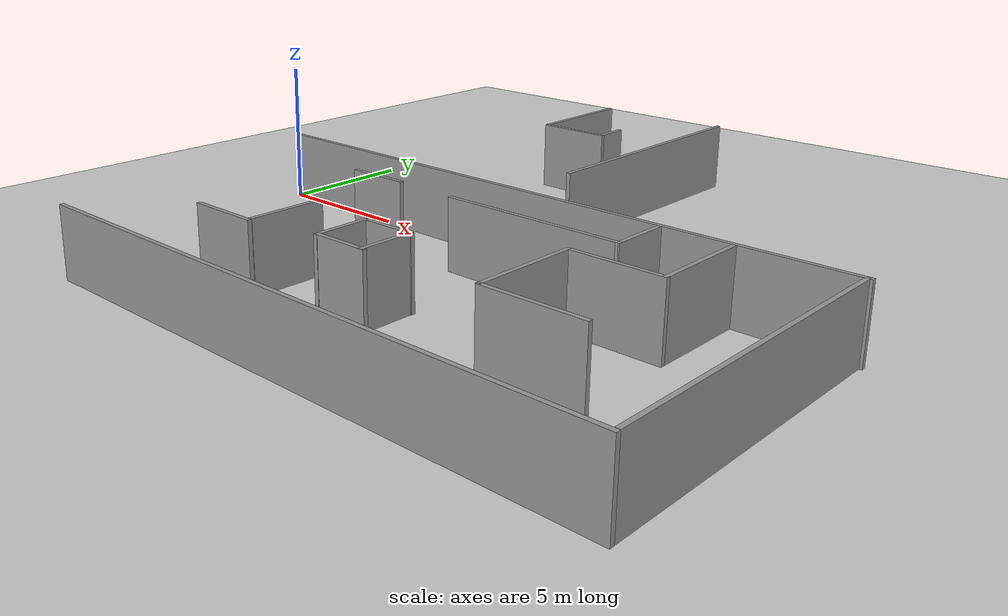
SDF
<sdf version="1.7">
 <world name="default">
  <model name="ground_plane">
   <static>1</static>
   <link name="link">
    <collision name="collision">
     <geometry><plane><normal>0 0 1</normal><size>100 100</size></plane></geometry>
     <surface>
      <contact><collide_bitmask>65535</collide_bitmask></contact>
      <friction><ode><mu>100</mu><mu2>50</mu2></ode></friction>
     </surface>
    </collision>
    <visual name="visual">
     <cast_shadows>0</cast_shadows>
     <geometry><plane><normal>0 0 1</normal><size>100 100</size></plane></geometry>
     <material>
      <script><uri>file://media/materials/scripts/gazebo.material</uri><name>Gazebo/Grey</name></script>
     </material>
    </visual>
   </link>
  </model>
  <model name="newwoorld">
   <link name="Wall_109">
    <pose>14.3711 -3.20093 0 0 -0 3.14159</pose>
    <visual name="Wall_109_Visual">
     <pose>0 0 1.25 0 -0 0</pose>
     <geometry><box><size>6.5 0.15 2.5</size></box></geometry>
     <material>
      <script><uri>file://media/materials/scripts/gazebo.material</uri><name>Gazebo/Grey</name></script>
      <ambient>1 1 1 1</ambient>
      <shader type="pixel"/>
     </material>
     <meta><layer>0</layer></meta>
    </visual>
    <collision name="Wall_109_Collision">
     <pose>0 0 1.25 0 -0 0</pose>
     <geometry><box><size>6.5 0.15 2.5</size></box></geometry>
     <surface>
      <friction>
       <ode><mu>1</mu><mu2>1</mu2><fdir1>0 0 0</fdir1><slip1>0</slip1><slip2>0</slip2></ode>
       <torsional>
        <coefficient>1</coefficient>
        <patch_radius>0</patch_radius>
        <surface_radius>0</surface_radius>
        <use_patch_radius>1</use_patch_radius>
        <ode><slip>0</slip></ode>
       </torsional>
      </friction>
      <bounce><restitution_coefficient>0</restitution_coefficient><threshold>1e+06</threshold></bounce>
      <contact>
       <collide_without_contact>0</collide_without_contact>
       <collide_without_contact_bitmask>1</collide_without_contact_bitmask>
       <collide_bitmask>1</collide_bitmask>
       <ode>
        <soft_cfm>0</soft_cfm>
        <soft_erp>0.2</soft_erp>
        <kp>1e+13</kp>
        <kd>1</kd>
        <max_vel>0.01</max_vel>
        <min_depth>0</min_depth>
       </ode>
       <bullet>
        <split_impulse>1</split_impulse>
        <split_impulse_penetration_threshold>-0.01</split_impulse_penetration_threshold>
        <soft_cfm>0</soft_cfm>
        <soft_erp>0.2</soft_erp>
        <kp>1e+13</kp>
        <kd>1</kd>
       </bullet>
      </contact>
     </surface>
    </collision>
   </link>
   <link name="Wall_113">
    <pose>11.8737 -6.61393 0 0 -0 3.14159</pose>
    <visual name="Wall_113_Visual">
     <pose>0 0 1.25 0 -0 0</pose>
     <geometry><box><size>2 0.15 2.5</size></box></geometry>
     <material>
      <script><uri>file://media/materials/scripts/gazebo.material</uri><name>Gazebo/Grey</name></script>
      <ambient>1 1 1 1</ambient>
      <shader type="pixel"/>
     </material>
     <meta><layer>0</layer></meta>
    </visual>
    <collision name="Wall_113_Collision">
     <pose>0 0 1.25 0 -0 0</pose>
     <geometry><box><size>2 0.15 2.5</size></box></geometry>
     <surface>
      <friction>
       <ode><mu>1</mu><mu2>1</mu2><fdir1>0 0 0</fdir1><slip1>0</slip1><slip2>0</slip2></ode>
       <torsional>
        <coefficient>1</coefficient>
        <patch_radius>0</patch_radius>
        <surface_radius>0</surface_radius>
        <use_patch_radius>1</use_patch_radius>
        <ode><slip>0</slip></ode>
       </torsional>
      </friction>
      <bounce><restitution_coefficient>0</restitution_coefficient><threshold>1e+06</threshold></bounce>
      <contact>
       <collide_without_contact>0</collide_without_contact>
       <collide_without_contact_bitmask>1</collide_without_contact_bitmask>
       <collide_bitmask>1</collide_bitmask>
       <ode>
        <soft_cfm>0</soft_cfm>
        <soft_erp>0.2</soft_erp>
        <kp>1e+13</kp>
        <kd>1</kd>
        <max_vel>0.01</max_vel>
        <min_depth>0</min_depth>
       </ode>
       <bullet>
        <split_impulse>1</split_impulse>
        <split_impulse_penetration_threshold>-0.01</split_impulse_penetration_threshold>
        <soft_cfm>0</soft_cfm>
        <soft_erp>0.2</soft_erp>
        <kp>1e+13</kp>
        <kd>1</kd>
       </bullet>
      </contact>
     </surface>
    </collision>
   </link>
   <link name="Wall_114">
    <pose>10.928 -7.59269 0 0 0 -1.5708</pose>
    <visual name="Wall_114_Visual">
     <pose>0 0 1.25 0 -0 0</pose>
     <geometry><box><size>2 0.15 2.5</size></box></geometry>
     <material>
      <script><uri>file://media/materials/scripts/gazebo.material</uri><name>Gazebo/Grey</name></script>
      <ambient>1 1 1 1</ambient>
      <shader type="pixel"/>
     </material>
     <meta><layer>0</layer></meta>
    </visual>
    <collision name="Wall_114_Collision">
     <pose>0 0 1.25 0 -0 0</pose>
     <geometry><box><size>2 0.15 2.5</size></box></geometry>
     <surface>
      <friction>
       <ode><mu>1</mu><mu2>1</mu2><fdir1>0 0 0</fdir1><slip1>0</slip1><slip2>0</slip2></ode>
       <torsional>
        <coefficient>1</coefficient>
        <patch_radius>0</patch_radius>
        <surface_radius>0</surface_radius>
        <use_patch_radius>1</use_patch_radius>
        <ode><slip>0</slip></ode>
       </torsional>
      </friction>
      <bounce><restitution_coefficient>0</restitution_coefficient><threshold>1e+06</threshold></bounce>
      <contact>
       <collide_without_contact>0</collide_without_contact>
       <collide_without_contact_bitmask>1</collide_without_contact_bitmask>
       <collide_bitmask>1</collide_bitmask>
       <ode>
        <soft_cfm>0</soft_cfm>
        <soft_erp>0.2</soft_erp>
        <kp>1e+13</kp>
        <kd>1</kd>
        <max_vel>0.01</max_vel>
        <min_depth>0</min_depth>
       </ode>
       <bullet>
        <split_impulse>1</split_impulse>
        <split_impulse_penetration_threshold>-0.01</split_impulse_penetration_threshold>
        <soft_cfm>0</soft_cfm>
        <soft_erp>0.2</soft_erp>
        <kp>1e+13</kp>
        <kd>1</kd>
       </bullet>
      </contact>
     </surface>
    </collision>
   </link>
   <link name="Wall_117">
    <pose>12.7692 -7.56461 0 0 0 -1.5708</pose>
    <visual name="Wall_117_Visual">
     <pose>0 0 1.25 0 -0 0</pose>
     <geometry><box><size>2 0.15 2.5</size></box></geometry>
     <material>
      <script><uri>file://media/materials/scripts/gazebo.material</uri><name>Gazebo/Grey</name></script>
      <ambient>1 1 1 1</ambient>
      <shader type="pixel"/>
     </material>
     <meta><layer>0</layer></meta>
    </visual>
    <collision name="Wall_117_Collision">
     <pose>0 0 1.25 0 -0 0</pose>
     <geometry><box><size>2 0.15 2.5</size></box></geometry>
     <surface>
      <friction>
       <ode><mu>1</mu><mu2>1</mu2><fdir1>0 0 0</fdir1><slip1>0</slip1><slip2>0</slip2></ode>
       <torsional>
        <coefficient>1</coefficient>
        <patch_radius>0</patch_radius>
        <surface_radius>0</surface_radius>
        <use_patch_radius>1</use_patch_radius>
        <ode><slip>0</slip></ode>
       </torsional>
      </friction>
      <bounce><restitution_coefficient>0</restitution_coefficient><threshold>1e+06</threshold></bounce>
      <contact>
       <collide_without_contact>0</collide_without_contact>
       <collide_without_contact_bitmask>1</collide_without_contact_bitmask>
       <collide_bitmask>1</collide_bitmask>
       <ode>
        <soft_cfm>0</soft_cfm>
        <soft_erp>0.2</soft_erp>
        <kp>1e+13</kp>
        <kd>1</kd>
        <max_vel>0.01</max_vel>
        <min_depth>0</min_depth>
       </ode>
       <bullet>
        <split_impulse>1</split_impulse>
        <split_impulse_penetration_threshold>-0.01</split_impulse_penetration_threshold>
        <soft_cfm>0</soft_cfm>
        <soft_erp>0.2</soft_erp>
        <kp>1e+13</kp>
        <kd>1</kd>
       </bullet>
      </contact>
     </surface>
    </collision>
   </link>
   <link name="Wall_118">
    <pose>11.9001 -8.50409 0 0 -0 3.14159</pose>
    <visual name="Wall_118_Visual">
     <pose>0 0 1.25 0 -0 0</pose>
     <geometry><box><size>2 0.15 2.5</size></box></geometry>
     <material>
      <script><uri>file://media/materials/scripts/gazebo.material</uri><name>Gazebo/Grey</name></script>
      <ambient>1 1 1 1</ambient>
      <shader type="pixel"/>
     </material>
     <meta><layer>0</layer></meta>
    </visual>
    <collision name="Wall_118_Collision">
     <pose>0 0 1.25 0 -0 0</pose>
     <geometry><box><size>2 0.15 2.5</size></box></geometry>
     <surface>
      <friction>
       <ode><mu>1</mu><mu2>1</mu2><fdir1>0 0 0</fdir1><slip1>0</slip1><slip2>0</slip2></ode>
       <torsional>
        <coefficient>1</coefficient>
        <patch_radius>0</patch_radius>
        <surface_radius>0</surface_radius>
        <use_patch_radius>1</use_patch_radius>
        <ode><slip>0</slip></ode>
       </torsional>
      </friction>
      <bounce><restitution_coefficient>0</restitution_coefficient><threshold>1e+06</threshold></bounce>
      <contact>
       <collide_without_contact>0</collide_without_contact>
       <collide_without_contact_bitmask>1</collide_without_contact_bitmask>
       <collide_bitmask>1</collide_bitmask>
       <ode>
        <soft_cfm>0</soft_cfm>
        <soft_erp>0.2</soft_erp>
        <kp>1e+13</kp>
        <kd>1</kd>
        <max_vel>0.01</max_vel>
        <min_depth>0</min_depth>
       </ode>
       <bullet>
        <split_impulse>1</split_impulse>
        <split_impulse_penetration_threshold>-0.01</split_impulse_penetration_threshold>
        <soft_cfm>0</soft_cfm>
        <soft_erp>0.2</soft_erp>
        <kp>1e+13</kp>
        <kd>1</kd>
       </bullet>
      </contact>
     </surface>
    </collision>
   </link>
   <link name="Wall_120">
    <pose>7.23265 -9.0668 0 0 -0 0</pose>
    <inertial>
     <inertia><ixx>0</ixx><ixy>0</ixy><ixz>0</ixz><iyy>0</iyy><iyz>0</iyz><izz>0</izz></inertia>
     <mass>0</mass>
    </inertial>
    <visual name="Wall_120_Visual">
     <pose>0 0 1.25 0 -0 0</pose>
     <geometry><box><size>2.57319 0.15 2.5</size></box></geometry>
     <material>
      <script><uri>file://media/materials/scripts/gazebo.material</uri><name>Gazebo/Grey</name></script>
      <ambient>1 1 1 1</ambient>
      <shader type="pixel"/>
     </material>
     <meta><layer>0</layer></meta>
    </visual>
    <collision name="Wall_120_Collision">
     <pose>0 0 1.25 0 -0 0</pose>
     <geometry><box><size>2.57319 0.15 2.5</size></box></geometry>
     <surface>
      <friction>
       <ode><mu>1</mu><mu2>1</mu2><fdir1>0 0 0</fdir1><slip1>0</slip1><slip2>0</slip2></ode>
       <torsional>
        <coefficient>1</coefficient>
        <patch_radius>0</patch_radius>
        <surface_radius>0</surface_radius>
        <use_patch_radius>1</use_patch_radius>
        <ode><slip>0</slip></ode>
       </torsional>
      </friction>
      <bounce><restitution_coefficient>0</restitution_coefficient><threshold>1e+06</threshold></bounce>
      <contact>
       <collide_without_contact>0</collide_without_contact>
       <collide_without_contact_bitmask>1</collide_without_contact_bitmask>
       <collide_bitmask>1</collide_bitmask>
       <ode>
        <soft_cfm>0</soft_cfm>
        <soft_erp>0.2</soft_erp>
        <kp>1e+13</kp>
        <kd>1</kd>
        <max_vel>0.01</max_vel>
        <min_depth>0</min_depth>
       </ode>
       <bullet>
        <split_impulse>1</split_impulse>
        <split_impulse_penetration_threshold>-0.01</split_impulse_penetration_threshold>
        <soft_cfm>0</soft_cfm>
        <soft_erp>0.2</soft_erp>
        <kp>1e+13</kp>
        <kd>1</kd>
       </bullet>
      </contact>
     </surface>
    </collision>
   </link>
   <link name="Wall_125">
    <pose>7.69661 -3.06382 0 0 -0 0</pose>
    <visual name="Wall_125_Visual">
     <pose>0 0 1.25 0 -0 0</pose>
     <geometry><box><size>2.25 0.15 2.5</size></box></geometry>
     <material>
      <script><uri>file://media/materials/scripts/gazebo.material</uri><name>Gazebo/Grey</name></script>
      <ambient>1 1 1 1</ambient>
      <shader type="pixel"/>
     </material>
     <meta><layer>0</layer></meta>
    </visual>
    <collision name="Wall_125_Collision">
     <pose>0 0 1.25 0 -0 0</pose>
     <geometry><box><size>2.25 0.15 2.5</size></box></geometry>
     <surface>
      <friction>
       <ode><mu>1</mu><mu2>1</mu2><fdir1>0 0 0</fdir1><slip1>0</slip1><slip2>0</slip2></ode>
       <torsional>
        <coefficient>1</coefficient>
        <patch_radius>0</patch_radius>
        <surface_radius>0</surface_radius>
        <use_patch_radius>1</use_patch_radius>
        <ode><slip>0</slip></ode>
       </torsional>
      </friction>
      <bounce><restitution_coefficient>0</restitution_coefficient><threshold>1e+06</threshold></bounce>
      <contact>
       <collide_without_contact>0</collide_without_contact>
       <collide_without_contact_bitmask>1</collide_without_contact_bitmask>
       <collide_bitmask>1</collide_bitmask>
       <ode>
        <soft_cfm>0</soft_cfm>
        <soft_erp>0.2</soft_erp>
        <kp>1e+13</kp>
        <kd>1</kd>
        <max_vel>0.01</max_vel>
        <min_depth>0</min_depth>
       </ode>
       <bullet>
        <split_impulse>1</split_impulse>
        <split_impulse_penetration_threshold>-0.01</split_impulse_penetration_threshold>
        <soft_cfm>0</soft_cfm>
        <soft_erp>0.2</soft_erp>
        <kp>1e+13</kp>
        <kd>1</kd>
       </bullet>
      </contact>
     </surface>
    </collision>
   </link>
   <link name="Wall_126">
    <pose>8.42456 -7.58944 0 0 0 -1.5708</pose>
    <visual name="Wall_126_Visual">
     <pose>0 0 1.25 0 -0 0</pose>
     <geometry><box><size>2.75 0.15 2.5</size></box></geometry>
     <material>
      <script><uri>file://media/materials/scripts/gazebo.material</uri><name>Gazebo/Grey</name></script>
      <ambient>1 1 1 1</ambient>
      <shader type="pixel"/>
     </material>
     <meta><layer>0</layer></meta>
    </visual>
    <collision name="Wall_126_Collision">
     <pose>0 0 1.25 0 -0 0</pose>
     <geometry><box><size>2.75 0.15 2.5</size></box></geometry>
     <surface>
      <friction>
       <ode><mu>1</mu><mu2>1</mu2><fdir1>0 0 0</fdir1><slip1>0</slip1><slip2>0</slip2></ode>
       <torsional>
        <coefficient>1</coefficient>
        <patch_radius>0</patch_radius>
        <surface_radius>0</surface_radius>
        <use_patch_radius>1</use_patch_radius>
        <ode><slip>0</slip></ode>
       </torsional>
      </friction>
      <bounce><restitution_coefficient>0</restitution_coefficient><threshold>1e+06</threshold></bounce>
      <contact>
       <collide_without_contact>0</collide_without_contact>
       <collide_without_contact_bitmask>1</collide_without_contact_bitmask>
       <collide_bitmask>1</collide_bitmask>
       <ode>
        <soft_cfm>0</soft_cfm>
        <soft_erp>0.2</soft_erp>
        <kp>1e+13</kp>
        <kd>1</kd>
        <max_vel>0.01</max_vel>
        <min_depth>0</min_depth>
       </ode>
       <bullet>
        <split_impulse>1</split_impulse>
        <split_impulse_penetration_threshold>-0.01</split_impulse_penetration_threshold>
        <soft_cfm>0</soft_cfm>
        <soft_erp>0.2</soft_erp>
        <kp>1e+13</kp>
        <kd>1</kd>
       </bullet>
      </contact>
     </surface>
    </collision>
   </link>
   <link name="Wall_129">
    <pose>17.5461 -2.15094 0 0 -0 1.5708</pose>
    <visual name="Wall_129_Visual">
     <pose>0 0 1.25 0 -0 0</pose>
     <geometry><box><size>2.25 0.15 2.5</size></box></geometry>
     <material>
      <script><uri>file://media/materials/scripts/gazebo.material</uri><name>Gazebo/Grey</name></script>
      <ambient>1 1 1 1</ambient>
      <shader type="pixel"/>
     </material>
     <meta><layer>0</layer></meta>
    </visual>
    <collision name="Wall_129_Collision">
     <pose>0 0 1.25 0 -0 0</pose>
     <geometry><box><size>2.25 0.15 2.5</size></box></geometry>
     <surface>
      <friction>
       <ode><mu>1</mu><mu2>1</mu2><fdir1>0 0 0</fdir1><slip1>0</slip1><slip2>0</slip2></ode>
       <torsional>
        <coefficient>1</coefficient>
        <patch_radius>0</patch_radius>
        <surface_radius>0</surface_radius>
        <use_patch_radius>1</use_patch_radius>
        <ode><slip>0</slip></ode>
       </torsional>
      </friction>
      <bounce><restitution_coefficient>0</restitution_coefficient><threshold>1e+06</threshold></bounce>
      <contact>
       <collide_without_contact>0</collide_without_contact>
       <collide_without_contact_bitmask>1</collide_without_contact_bitmask>
       <collide_bitmask>1</collide_bitmask>
       <ode>
        <soft_cfm>0</soft_cfm>
        <soft_erp>0.2</soft_erp>
        <kp>1e+13</kp>
        <kd>1</kd>
        <max_vel>0.01</max_vel>
        <min_depth>0</min_depth>
       </ode>
       <bullet>
        <split_impulse>1</split_impulse>
        <split_impulse_penetration_threshold>-0.01</split_impulse_penetration_threshold>
        <soft_cfm>0</soft_cfm>
        <soft_erp>0.2</soft_erp>
        <kp>1e+13</kp>
        <kd>1</kd>
       </bullet>
      </contact>
     </surface>
    </collision>
   </link>
   <link name="Wall_131">
    <pose>19.9598 -2.90481 0 0 0 -1.5708</pose>
    <visual name="Wall_131_Visual">
     <pose>0 0 1.25 0 -0 0</pose>
     <geometry><box><size>3.5 0.15 2.5</size></box></geometry>
     <material>
      <script><uri>file://media/materials/scripts/gazebo.material</uri><name>Gazebo/Grey</name></script>
      <ambient>1 1 1 1</ambient>
      <shader type="pixel"/>
     </material>
     <meta><layer>0</layer></meta>
    </visual>
    <collision name="Wall_131_Collision">
     <pose>0 0 1.25 0 -0 0</pose>
     <geometry><box><size>3.5 0.15 2.5</size></box></geometry>
     <surface>
      <friction>
       <ode><mu>1</mu><mu2>1</mu2><fdir1>0 0 0</fdir1><slip1>0</slip1><slip2>0</slip2></ode>
       <torsional>
        <coefficient>1</coefficient>
        <patch_radius>0</patch_radius>
        <surface_radius>0</surface_radius>
        <use_patch_radius>1</use_patch_radius>
        <ode><slip>0</slip></ode>
       </torsional>
      </friction>
      <bounce><restitution_coefficient>0</restitution_coefficient><threshold>1e+06</threshold></bounce>
      <contact>
       <collide_without_contact>0</collide_without_contact>
       <collide_without_contact_bitmask>1</collide_without_contact_bitmask>
       <collide_bitmask>1</collide_bitmask>
       <ode>
        <soft_cfm>0</soft_cfm>
        <soft_erp>0.2</soft_erp>
        <kp>1e+13</kp>
        <kd>1</kd>
        <max_vel>0.01</max_vel>
        <min_depth>0</min_depth>
       </ode>
       <bullet>
        <split_impulse>1</split_impulse>
        <split_impulse_penetration_threshold>-0.01</split_impulse_penetration_threshold>
        <soft_cfm>0</soft_cfm>
        <soft_erp>0.2</soft_erp>
        <kp>1e+13</kp>
        <kd>1</kd>
       </bullet>
      </contact>
     </surface>
    </collision>
   </link>
   <link name="Wall_132">
    <pose>18.4098 -4.57981 0 0 -0 3.14159</pose>
    <visual name="Wall_132_Visual">
     <pose>0 0 1.25 0 -0 0</pose>
     <geometry><box><size>3.25 0.15 2.5</size></box></geometry>
     <material>
      <script><uri>file://media/materials/scripts/gazebo.material</uri><name>Gazebo/Grey</name></script>
      <ambient>1 1 1 1</ambient>
      <shader type="pixel"/>
     </material>
     <meta><layer>0</layer></meta>
    </visual>
    <collision name="Wall_132_Collision">
     <pose>0 0 1.25 0 -0 0</pose>
     <geometry><box><size>3.25 0.15 2.5</size></box></geometry>
     <surface>
      <friction>
       <ode><mu>1</mu><mu2>1</mu2><fdir1>0 0 0</fdir1><slip1>0</slip1><slip2>0</slip2></ode>
       <torsional>
        <coefficient>1</coefficient>
        <patch_radius>0</patch_radius>
        <surface_radius>0</surface_radius>
        <use_patch_radius>1</use_patch_radius>
        <ode><slip>0</slip></ode>
       </torsional>
      </friction>
      <bounce><restitution_coefficient>0</restitution_coefficient><threshold>1e+06</threshold></bounce>
      <contact>
       <collide_without_contact>0</collide_without_contact>
       <collide_without_contact_bitmask>1</collide_without_contact_bitmask>
       <collide_bitmask>1</collide_bitmask>
       <ode>
        <soft_cfm>0</soft_cfm>
        <soft_erp>0.2</soft_erp>
        <kp>1e+13</kp>
        <kd>1</kd>
        <max_vel>0.01</max_vel>
        <min_depth>0</min_depth>
       </ode>
       <bullet>
        <split_impulse>1</split_impulse>
        <split_impulse_penetration_threshold>-0.01</split_impulse_penetration_threshold>
        <soft_cfm>0</soft_cfm>
        <soft_erp>0.2</soft_erp>
        <kp>1e+13</kp>
        <kd>1</kd>
       </bullet>
      </contact>
     </surface>
    </collision>
   </link>
   <link name="Wall_133">
    <pose>16.8377 -6.39924 0 0 0 -1.5708</pose>
    <inertial>
     <inertia><ixx>0</ixx><ixy>0</ixy><ixz>0</ixz><iyy>0</iyy><iyz>0</iyz><izz>0</izz></inertia>
     <mass>0</mass>
    </inertial>
    <visual name="Wall_133_Visual">
     <pose>0 0 1.25 0 -0 0</pose>
     <geometry><box><size>3.80144 0.15 2.5</size></box></geometry>
     <material>
      <script><uri>file://media/materials/scripts/gazebo.material</uri><name>Gazebo/Grey</name></script>
      <ambient>1 1 1 1</ambient>
      <shader type="pixel"/>
     </material>
     <meta><layer>0</layer></meta>
    </visual>
    <collision name="Wall_133_Collision">
     <pose>0 0 1.25 0 -0 0</pose>
     <geometry><box><size>3.80144 0.15 2.5</size></box></geometry>
     <surface>
      <friction>
       <ode><mu>1</mu><mu2>1</mu2><fdir1>0 0 0</fdir1><slip1>0</slip1><slip2>0</slip2></ode>
       <torsional>
        <coefficient>1</coefficient>
        <patch_radius>0</patch_radius>
        <surface_radius>0</surface_radius>
        <use_patch_radius>1</use_patch_radius>
        <ode><slip>0</slip></ode>
       </torsional>
      </friction>
      <bounce><restitution_coefficient>0</restitution_coefficient><threshold>1e+06</threshold></bounce>
      <contact>
       <collide_without_contact>0</collide_without_contact>
       <collide_without_contact_bitmask>1</collide_without_contact_bitmask>
       <collide_bitmask>1</collide_bitmask>
       <ode>
        <soft_cfm>0</soft_cfm>
        <soft_erp>0.2</soft_erp>
        <kp>1e+13</kp>
        <kd>1</kd>
        <max_vel>0.01</max_vel>
        <min_depth>0</min_depth>
       </ode>
       <bullet>
        <split_impulse>1</split_impulse>
        <split_impulse_penetration_threshold>-0.01</split_impulse_penetration_threshold>
        <soft_cfm>0</soft_cfm>
        <soft_erp>0.2</soft_erp>
        <kp>1e+13</kp>
        <kd>1</kd>
       </bullet>
      </contact>
     </surface>
    </collision>
   </link>
   <link name="Wall_134">
    <pose>18.5366 -8.24941 0 0 -0 0</pose>
    <inertial>
     <inertia><ixx>0</ixx><ixy>0</ixy><ixz>0</ixz><iyy>0</iyy><iyz>0</iyz><izz>0</izz></inertia>
     <mass>0</mass>
    </inertial>
    <visual name="Wall_134_Visual">
     <pose>0 0 1.25 0 -0 0</pose>
     <geometry><box><size>3.50876 0.15 2.5</size></box></geometry>
     <material>
      <script><uri>file://media/materials/scripts/gazebo.material</uri><name>Gazebo/Grey</name></script>
      <ambient>1 1 1 1</ambient>
      <shader type="pixel"/>
     </material>
     <meta><layer>0</layer></meta>
    </visual>
    <collision name="Wall_134_Collision">
     <pose>0 0 1.25 0 -0 0</pose>
     <geometry><box><size>3.50876 0.15 2.5</size></box></geometry>
     <surface>
      <friction>
       <ode><mu>1</mu><mu2>1</mu2><fdir1>0 0 0</fdir1><slip1>0</slip1><slip2>0</slip2></ode>
       <torsional>
        <coefficient>1</coefficient>
        <patch_radius>0</patch_radius>
        <surface_radius>0</surface_radius>
        <use_patch_radius>1</use_patch_radius>
        <ode><slip>0</slip></ode>
       </torsional>
      </friction>
      <bounce><restitution_coefficient>0</restitution_coefficient><threshold>1e+06</threshold></bounce>
      <contact>
       <collide_without_contact>0</collide_without_contact>
       <collide_without_contact_bitmask>1</collide_without_contact_bitmask>
       <collide_bitmask>1</collide_bitmask>
       <ode>
        <soft_cfm>0</soft_cfm>
        <soft_erp>0.2</soft_erp>
        <kp>1e+13</kp>
        <kd>1</kd>
        <max_vel>0.01</max_vel>
        <min_depth>0</min_depth>
       </ode>
       <bullet>
        <split_impulse>1</split_impulse>
        <split_impulse_penetration_threshold>-0.01</split_impulse_penetration_threshold>
        <soft_cfm>0</soft_cfm>
        <soft_erp>0.2</soft_erp>
        <kp>1e+13</kp>
        <kd>1</kd>
       </bullet>
      </contact>
     </surface>
    </collision>
   </link>
   <link name="Wall_86">
    <pose>12.1366 6.51166 0 0 0 -1.5708</pose>
    <inertial>
     <inertia><ixx>0</ixx><ixy>0</ixy><ixz>0</ixz><iyy>0</iyy><iyz>0</iyz><izz>0</izz></inertia>
     <mass>0</mass>
    </inertial>
    <visual name="Wall_86_Visual">
     <pose>0 0 1.25 0 -0 0</pose>
     <geometry><box><size>9.8262 0.15 2.5</size></box></geometry>
     <material>
      <script><uri>file://media/materials/scripts/gazebo.material</uri><name>Gazebo/Grey</name></script>
      <ambient>1 1 1 1</ambient>
      <shader type="pixel"/>
     </material>
     <meta><layer>0</layer></meta>
    </visual>
    <collision name="Wall_86_Collision">
     <pose>0 0 1.25 0 -0 0</pose>
     <geometry><box><size>9.8262 0.15 2.5</size></box></geometry>
     <surface>
      <friction>
       <ode><mu>1</mu><mu2>1</mu2><fdir1>0 0 0</fdir1><slip1>0</slip1><slip2>0</slip2></ode>
       <torsional>
        <coefficient>1</coefficient>
        <patch_radius>0</patch_radius>
        <surface_radius>0</surface_radius>
        <use_patch_radius>1</use_patch_radius>
        <ode><slip>0</slip></ode>
       </torsional>
      </friction>
      <bounce><restitution_coefficient>0</restitution_coefficient><threshold>1e+06</threshold></bounce>
      <contact>
       <collide_without_contact>0</collide_without_contact>
       <collide_without_contact_bitmask>1</collide_without_contact_bitmask>
       <collide_bitmask>1</collide_bitmask>
       <ode>
        <soft_cfm>0</soft_cfm>
        <soft_erp>0.2</soft_erp>
        <kp>1e+13</kp>
        <kd>1</kd>
        <max_vel>0.01</max_vel>
        <min_depth>0</min_depth>
       </ode>
       <bullet>
        <split_impulse>1</split_impulse>
        <split_impulse_penetration_threshold>-0.01</split_impulse_penetration_threshold>
        <soft_cfm>0</soft_cfm>
        <soft_erp>0.2</soft_erp>
        <kp>1e+13</kp>
        <kd>1</kd>
       </bullet>
      </contact>
     </surface>
    </collision>
   </link>
   <link name="Wall_89">
    <pose>12.4999 -1.07529 0 0 0 -0.001781</pose>
    <visual name="Wall_89_Visual">
     <pose>0 0 1.25 0 -0 0</pose>
     <geometry><box><size>22.7354 0.15 2.5</size></box></geometry>
     <material>
      <script><uri>file://media/materials/scripts/gazebo.material</uri><name>Gazebo/Grey</name></script>
      <ambient>1 1 1 1</ambient>
      <shader type="pixel"/>
     </material>
     <meta><layer>0</layer></meta>
    </visual>
    <collision name="Wall_89_Collision">
     <pose>0 0 1.25 0 -0 0</pose>
     <geometry><box><size>22.7354 0.15 2.5</size></box></geometry>
     <surface>
      <friction>
       <ode><mu>1</mu><mu2>1</mu2><fdir1>0 0 0</fdir1><slip1>0</slip1><slip2>0</slip2></ode>
       <torsional>
        <coefficient>1</coefficient>
        <patch_radius>0</patch_radius>
        <surface_radius>0</surface_radius>
        <use_patch_radius>1</use_patch_radius>
        <ode><slip>0</slip></ode>
       </torsional>
      </friction>
      <bounce><restitution_coefficient>0</restitution_coefficient><threshold>1e+06</threshold></bounce>
      <contact>
       <collide_without_contact>0</collide_without_contact>
       <collide_without_contact_bitmask>1</collide_without_contact_bitmask>
       <collide_bitmask>1</collide_bitmask>
       <ode>
        <soft_cfm>0</soft_cfm>
        <soft_erp>0.2</soft_erp>
        <kp>1e+13</kp>
        <kd>1</kd>
        <max_vel>0.01</max_vel>
        <min_depth>0</min_depth>
       </ode>
       <bullet>
        <split_impulse>1</split_impulse>
        <split_impulse_penetration_threshold>-0.01</split_impulse_penetration_threshold>
        <soft_cfm>0</soft_cfm>
        <soft_erp>0.2</soft_erp>
        <kp>1e+13</kp>
        <kd>1</kd>
       </bullet>
      </contact>
     </surface>
    </collision>
   </link>
   <link name="Wall_90">
    <pose>23.7051 -6.57721 0 0 0 -1.5708</pose>
    <inertial>
     <inertia><ixx>0</ixx><ixy>0</ixy><ixz>0</ixz><iyy>0</iyy><iyz>0</iyz><izz>0</izz></inertia>
     <mass>0</mass>
    </inertial>
    <visual name="Wall_90_Visual">
     <pose>0 0 1.25 0 -0 0</pose>
     <geometry><box><size>10.987 0.15 2.5</size></box></geometry>
     <material>
      <script><uri>file://media/materials/scripts/gazebo.material</uri><name>Gazebo/Grey</name></script>
      <ambient>1 1 1 1</ambient>
      <shader type="pixel"/>
     </material>
     <meta><layer>0</layer></meta>
    </visual>
    <collision name="Wall_90_Collision">
     <pose>0 0 1.25 0 -0 0</pose>
     <geometry><box><size>10.987 0.15 2.5</size></box></geometry>
     <surface>
      <friction>
       <ode><mu>1</mu><mu2>1</mu2><fdir1>0 0 0</fdir1><slip1>0</slip1><slip2>0</slip2></ode>
       <torsional>
        <coefficient>1</coefficient>
        <patch_radius>0</patch_radius>
        <surface_radius>0</surface_radius>
        <use_patch_radius>1</use_patch_radius>
        <ode><slip>0</slip></ode>
       </torsional>
      </friction>
      <bounce><restitution_coefficient>0</restitution_coefficient><threshold>1e+06</threshold></bounce>
      <contact>
       <collide_without_contact>0</collide_without_contact>
       <collide_without_contact_bitmask>1</collide_without_contact_bitmask>
       <collide_bitmask>1</collide_bitmask>
       <ode>
        <soft_cfm>0</soft_cfm>
        <soft_erp>0.2</soft_erp>
        <kp>1e+13</kp>
        <kd>1</kd>
        <max_vel>0.01</max_vel>
        <min_depth>0</min_depth>
       </ode>
       <bullet>
        <split_impulse>1</split_impulse>
        <split_impulse_penetration_threshold>-0.01</split_impulse_penetration_threshold>
        <soft_cfm>0</soft_cfm>
        <soft_erp>0.2</soft_erp>
        <kp>1e+13</kp>
        <kd>1</kd>
       </bullet>
      </contact>
     </surface>
    </collision>
   </link>
   <link name="Wall_91">
    <pose>13.4165 -12.1327 0 0 -0 3.13964</pose>
    <visual name="Wall_91_Visual">
     <pose>0 0 1.25 0 -0 0</pose>
     <geometry><box><size>20.7354 0.15 2.5</size></box></geometry>
     <material>
      <script><uri>file://media/materials/scripts/gazebo.material</uri><name>Gazebo/Grey</name></script>
      <ambient>1 1 1 1</ambient>
      <shader type="pixel"/>
     </material>
     <meta><layer>0</layer></meta>
    </visual>
    <collision name="Wall_91_Collision">
     <pose>0 0 1.25 0 -0 0</pose>
     <geometry><box><size>20.7354 0.15 2.5</size></box></geometry>
     <surface>
      <friction>
       <ode><mu>1</mu><mu2>1</mu2><fdir1>0 0 0</fdir1><slip1>0</slip1><slip2>0</slip2></ode>
       <torsional>
        <coefficient>1</coefficient>
        <patch_radius>0</patch_radius>
        <surface_radius>0</surface_radius>
        <use_patch_radius>1</use_patch_radius>
        <ode><slip>0</slip></ode>
       </torsional>
      </friction>
      <bounce><restitution_coefficient>0</restitution_coefficient><threshold>1e+06</threshold></bounce>
      <contact>
       <collide_without_contact>0</collide_without_contact>
       <collide_without_contact_bitmask>1</collide_without_contact_bitmask>
       <collide_bitmask>1</collide_bitmask>
       <ode>
        <soft_cfm>0</soft_cfm>
        <soft_erp>0.2</soft_erp>
        <kp>1e+13</kp>
        <kd>1</kd>
        <max_vel>0.01</max_vel>
        <min_depth>0</min_depth>
       </ode>
       <bullet>
        <split_impulse>1</split_impulse>
        <split_impulse_penetration_threshold>-0.01</split_impulse_penetration_threshold>
        <soft_cfm>0</soft_cfm>
        <soft_erp>0.2</soft_erp>
        <kp>1e+13</kp>
        <kd>1</kd>
       </bullet>
      </contact>
     </surface>
    </collision>
   </link>
   <link name="Wall_94">
    <pose>7.07471 9.08717 0 0 0 -1.5708</pose>
    <visual name="Wall_94_Visual">
     <pose>0 0 1.25 0 -0 0</pose>
     <geometry><box><size>4.25 0.15 2.5</size></box></geometry>
     <material>
      <script><uri>file://media/materials/scripts/gazebo.material</uri><name>Gazebo/Grey</name></script>
      <ambient>1 1 1 1</ambient>
      <shader type="pixel"/>
     </material>
     <meta><layer>0</layer></meta>
    </visual>
    <collision name="Wall_94_Collision">
     <pose>0 0 1.25 0 -0 0</pose>
     <geometry><box><size>4.25 0.15 2.5</size></box></geometry>
     <surface>
      <friction>
       <ode><mu>1</mu><mu2>1</mu2><fdir1>0 0 0</fdir1><slip1>0</slip1><slip2>0</slip2></ode>
       <torsional>
        <coefficient>1</coefficient>
        <patch_radius>0</patch_radius>
        <surface_radius>0</surface_radius>
        <use_patch_radius>1</use_patch_radius>
        <ode><slip>0</slip></ode>
       </torsional>
      </friction>
      <bounce><restitution_coefficient>0</restitution_coefficient><threshold>1e+06</threshold></bounce>
      <contact>
       <collide_without_contact>0</collide_without_contact>
       <collide_without_contact_bitmask>1</collide_without_contact_bitmask>
       <collide_bitmask>1</collide_bitmask>
       <ode>
        <soft_cfm>0</soft_cfm>
        <soft_erp>0.2</soft_erp>
        <kp>1e+13</kp>
        <kd>1</kd>
        <max_vel>0.01</max_vel>
        <min_depth>0</min_depth>
       </ode>
       <bullet>
        <split_impulse>1</split_impulse>
        <split_impulse_penetration_threshold>-0.01</split_impulse_penetration_threshold>
        <soft_cfm>0</soft_cfm>
        <soft_erp>0.2</soft_erp>
        <kp>1e+13</kp>
        <kd>1</kd>
       </bullet>
      </contact>
     </surface>
    </collision>
   </link>
   <link name="Wall_95">
    <pose>8.40203 6.88335 0 0 -0 0</pose>
    <visual name="Wall_95_Visual">
     <pose>0 0 1.25 0 -0 0</pose>
     <geometry><box><size>2.75 0.15 2.5</size></box></geometry>
     <material>
      <script><uri>file://media/materials/scripts/gazebo.material</uri><name>Gazebo/Grey</name></script>
      <ambient>1 1 1 1</ambient>
      <shader type="pixel"/>
     </material>
     <meta><layer>0</layer></meta>
    </visual>
    <collision name="Wall_95_Collision">
     <pose>0 0 1.25 0 -0 0</pose>
     <geometry><box><size>2.75 0.15 2.5</size></box></geometry>
     <surface>
      <friction>
       <ode><mu>1</mu><mu2>1</mu2><fdir1>0 0 0</fdir1><slip1>0</slip1><slip2>0</slip2></ode>
       <torsional>
        <coefficient>1</coefficient>
        <patch_radius>0</patch_radius>
        <surface_radius>0</surface_radius>
        <use_patch_radius>1</use_patch_radius>
        <ode><slip>0</slip></ode>
       </torsional>
      </friction>
      <bounce><restitution_coefficient>0</restitution_coefficient><threshold>1e+06</threshold></bounce>
      <contact>
       <collide_without_contact>0</collide_without_contact>
       <collide_without_contact_bitmask>1</collide_without_contact_bitmask>
       <collide_bitmask>1</collide_bitmask>
       <ode>
        <soft_cfm>0</soft_cfm>
        <soft_erp>0.2</soft_erp>
        <kp>1e+13</kp>
        <kd>1</kd>
        <max_vel>0.01</max_vel>
        <min_depth>0</min_depth>
       </ode>
       <bullet>
        <split_impulse>1</split_impulse>
        <split_impulse_penetration_threshold>-0.01</split_impulse_penetration_threshold>
        <soft_cfm>0</soft_cfm>
        <soft_erp>0.2</soft_erp>
        <kp>1e+13</kp>
        <kd>1</kd>
       </bullet>
      </contact>
     </surface>
    </collision>
   </link>
   <link name="Wall_96">
    <pose>9.68474 7.48645 0 0 -0 1.5708</pose>
    <inertial>
     <inertia><ixx>0</ixx><ixy>0</ixy><ixz>0</ixz><iyy>0</iyy><iyz>0</iyz><izz>0</izz></inertia>
     <mass>0</mass>
    </inertial>
    <visual name="Wall_96_Visual">
     <pose>0 0 1.25 0 -0 0</pose>
     <geometry><box><size>1.33416 0.15 2.5</size></box></geometry>
     <material>
      <script><uri>file://media/materials/scripts/gazebo.material</uri><name>Gazebo/Grey</name></script>
      <ambient>1 1 1 1</ambient>
      <shader type="pixel"/>
     </material>
     <meta><layer>0</layer></meta>
    </visual>
    <collision name="Wall_96_Collision">
     <pose>0 0 1.25 0 -0 0</pose>
     <geometry><box><size>1.33416 0.15 2.5</size></box></geometry>
     <surface>
      <friction>
       <ode><mu>1</mu><mu2>1</mu2><fdir1>0 0 0</fdir1><slip1>0</slip1><slip2>0</slip2></ode>
       <torsional>
        <coefficient>1</coefficient>
        <patch_radius>0</patch_radius>
        <surface_radius>0</surface_radius>
        <use_patch_radius>1</use_patch_radius>
        <ode><slip>0</slip></ode>
       </torsional>
      </friction>
      <bounce><restitution_coefficient>0</restitution_coefficient><threshold>1e+06</threshold></bounce>
      <contact>
       <collide_without_contact>0</collide_without_contact>
       <collide_without_contact_bitmask>1</collide_without_contact_bitmask>
       <collide_bitmask>1</collide_bitmask>
       <ode>
        <soft_cfm>0</soft_cfm>
        <soft_erp>0.2</soft_erp>
        <kp>1e+13</kp>
        <kd>1</kd>
        <max_vel>0.01</max_vel>
        <min_depth>0</min_depth>
       </ode>
       <bullet>
        <split_impulse>1</split_impulse>
        <split_impulse_penetration_threshold>-0.01</split_impulse_penetration_threshold>
        <soft_cfm>0</soft_cfm>
        <soft_erp>0.2</soft_erp>
        <kp>1e+13</kp>
        <kd>1</kd>
       </bullet>
      </contact>
     </surface>
    </collision>
   </link>
   <static>1</static>
   <pose>-0.999997 1 0 0 -0 0</pose>
  </model>
 </world>
</sdf>
